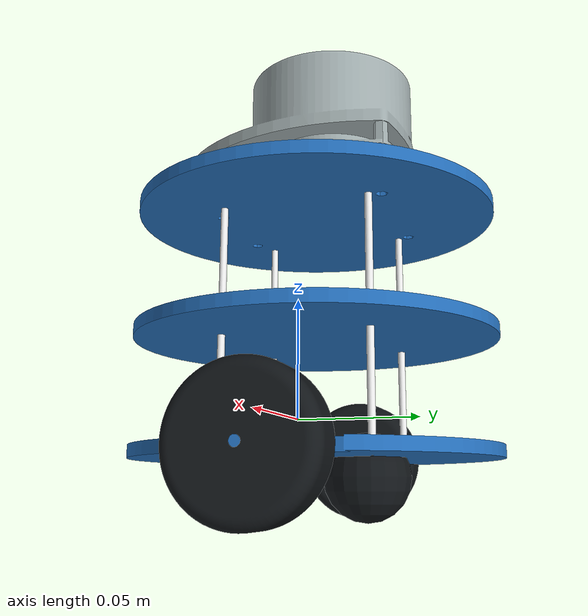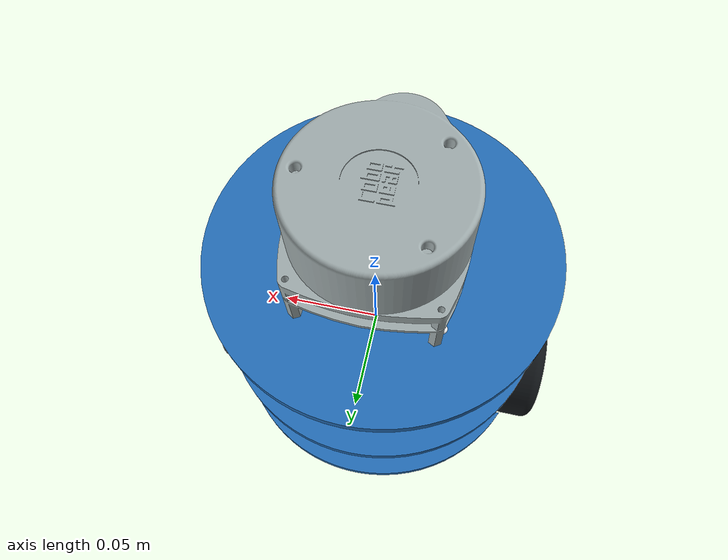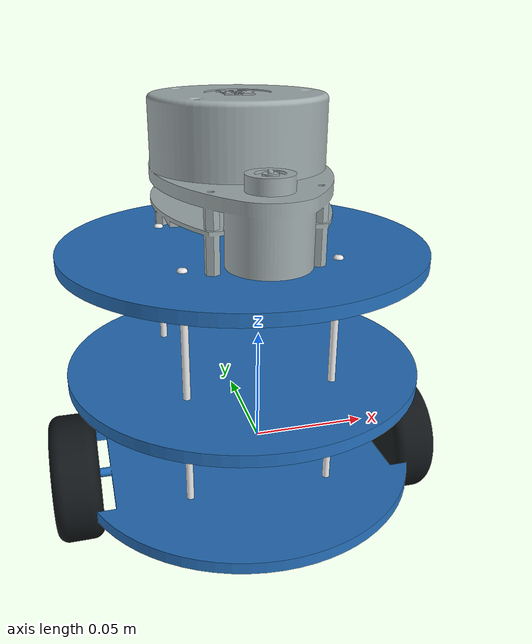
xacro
<?xml version="1.0"?>

<robot xmlns:xacro="http://www.ros.org/wiki/xacro" name="turtle_bot">
    <!--CONSTANTS-->
    <xacro:property name="TURTLE_BOT_PACKAGE_NAME" value="turtle_bot_desc"/>

    <!--IMPORTS-->
    <xacro:include filename="$(find ${TURTLE_BOT_PACKAGE_NAME})/turtle_bot/turtle_bot_core.xacro"/>
    <xacro:include filename="$(find ${TURTLE_BOT_PACKAGE_NAME})/turtle_bot/sensors/lidar.xacro"/>
    <xacro:include filename="$(find ${TURTLE_BOT_PACKAGE_NAME})/turtle_bot/control/gazebo_control.xacro"/>

    <!--SENSORS-->
    <!--LiDAR Sensors-->
    <xacro:lidar parent_link="top_layer"/>

</robot>

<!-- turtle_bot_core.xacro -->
<robot xmlns:xacro="http://www.ros.org/wiki/xacro">

    <!--CONSTANTS-->
    <xacro:property name="PI" value="3.14159"/>

    <!--IMPORTS-->
    <xacro:include filename="$(find ${TURTLE_BOT_PACKAGE_NAME})/turtle_bot/macros/material.xacro"/>
    <xacro:include filename="$(find ${TURTLE_BOT_PACKAGE_NAME})/turtle_bot/macros/wheels.xacro"/>
    <xacro:include filename="$(find ${TURTLE_BOT_PACKAGE_NAME})/turtle_bot/macros/inertial.xacro"/>
    <xacro:include filename="$(find ${TURTLE_BOT_PACKAGE_NAME})/turtle_bot/macros/standoff.xacro"/>

    <!--VARIABLES-->
    <xacro:property name="wheel_mass" value="0.062953359098010322481"/>
    <xacro:property name="standoff_mass" value="0.0059281210142902648896"/>
    <xacro:property name="lidar_mass" value="0.19842109046142830664"/>

    <xacro:property name="wheel_torque" value="20"/>
    <xacro:property name="caster_wheel_radius" value="0.017"/>

    <!--BASE LAYER-->
    <link name="base_layer">
        <visual>
            <origin xyz="-0.0054085951405280288662 0.0063858766431100638661 -0.010733145442279119069" rpy="0 -0 0" />
            <geometry>
                <mesh filename="package://turtle_bot_desc/turtle_bot/base_layer.stl"/>
            </geometry>
            <material name="blue_chassis"/>
        </visual>
        <collision>
            <origin xyz="-0.0054085951405280288662 0.0063858766431100638661 -0.010733145442279119069" rpy="0 -0 0" />
            <geometry>
                <mesh filename="package://turtle_bot_desc/turtle_bot/base_layer.stl"/>
            </geometry>
        </collision>
        <inertial>
            <origin xyz="-0.005408595140528033203 0.0063858766431100647334 -0.013233145442279119555" rpy="0 0 0"/>
            <mass value="0.076708445791032489613" />
            <inertia ixx="0.00011517387353310796605" ixy="0"  ixz="0" iyy="8.9133149707990215016e-05" iyz="0" izz="0.00020398868575373328422" />
        </inertial>
    </link>

    <!--GAZEBO MATERIAL-->
    <gazebo reference="base_layer">
        <material>Gazebo/Blue</material>
    </gazebo>

    <!--MID LAYER-->
    <link name="mid_layer">
        <visual>
            <origin xyz="-0.030052038200428277809 0.030052038200428274339 -0.050000000000000002776" rpy="0 -0 0" />
            <geometry>
                <mesh filename="package://turtle_bot_desc/turtle_bot/mid_layer.stl"/>
            </geometry>
            <material name="blue_chassis"/>
        </visual>
        <collision>
             <origin xyz="-0.030052038200428277809 0.030052038200428274339 -0.050000000000000002776" rpy="0 -0 0" />
            <geometry>
                <mesh filename="package://turtle_bot_desc/turtle_bot/mid_layer.stl"/>
            </geometry>
            </collision>
        <inertial>
            <origin xyz="-0.030052038200428277809 0.030052038200428277809 -0.0024999999999999952816" rpy="0 0 0"/>
            <mass value="0.083011182331746063978" />
            <inertia ixx="0.00011697427137894075811" ixy="0"  ixz="0" iyy="0.00011697427137894071745" iyz="0" izz="0.00023360266283149923186" />
        </inertial>
    </link>

     <!--GAZEBO MATERIAL-->
    <gazebo reference="mid_layer">
        <material>Gazebo/Blue</material>
    </gazebo>

    <!--TOP_LAYER-->
    <link name="top_layer">
        <visual>
            <origin xyz="-0.030052038200428277809 0.030052038200428274339 -0.10000000000000000555" rpy="0 -0 0" />
            <geometry>
                <mesh filename="package://turtle_bot_desc/turtle_bot/top_layer.stl"/>
            </geometry>
            <material name="blue_chassis"/>
        </visual>
        <collision>
            <origin xyz="-0.030052038200428277809 0.030052038200428274339 -0.10000000000000000555" rpy="0 -0 0" />
            <geometry>
                <mesh filename="package://turtle_bot_desc/turtle_bot/top_layer.stl"/>
            </geometry>
        </collision>
        <inertial>
            <origin xyz="-0.030052036065168211826 0.030052035531353181452 -0.0025000000000000022204" rpy="0 0 0"/>
            <mass value="0.082705577310317246464" />
            <inertia ixx="0.0001165988706191439545" ixy="-6.1809275542363220998e-12"  ixz="0" iyy="0.00011679231738675145886" iyz="0" izz="0.00023304658143376906932" />
        </inertial>
    </link>

     <!--GAZEBO MATERIAL-->
    <gazebo reference="top_layer">
        <material>Gazebo/Blue</material>
    </gazebo>

    <!--STANDOFFS-->
    <!--STANDOFF 1-->
    <xacro:standoff base_number="1" standoff_mass="${standoff_mass}">
        <origin xyz="0.024643443059900252412 -0.023666161557318210473 -0.015733145442279120041" rpy="3.141592653589793116 -0 0" />
        <parent link="base_layer"/>
    </xacro:standoff>

    <joint name="mid_joint_1" type="fixed">
        <origin xyz="-3.4694469519536141888e-18 0 -0.052499999999999991118" rpy="3.141592653589793116 -0 0" />
        <parent link="Standoff_1" />
        <child link="mid_layer" />
        <axis xyz="0 0 1"/>
        <limit effort="1" velocity="20" />
        <joint_properties friction="0.0"/>
    </joint>

    <joint name="top_joint_1" type="fixed">
        <origin xyz="-3.4694469519536141888e-18 0 -0.10499999999999999611" rpy="3.141592653589793116 -0 0" />
        <parent link="Standoff_1" />
        <child link="top_layer" />
        <axis xyz="0 0 1"/>
        <limit effort="1" velocity="20" />
        <joint_properties friction="0.0"/>
    </joint>

    <!--STANDOFF 2-->
    <xacro:standoff base_number="2" standoff_mass="${standoff_mass}">
        <origin xyz="-0.035460633340956310144 -0.023666161557318217412 -0.015733145442279120041" rpy="3.141592653589793116 -0 0" />
        <parent link="base_layer"/>
    </xacro:standoff>

    <!--STANDOFF 3-->
    <xacro:standoff base_number="3" standoff_mass="${standoff_mass}">
        <origin xyz="0.024643443059900252412 0.036437914843538331267 -0.015733145442279120041" rpy="3.141592653589793116 -0 0" />
        <parent link="base_layer"/>
    </xacro:standoff>

    <!--STANDOFF 4-->
    <xacro:standoff base_number="4" standoff_mass="${standoff_mass}">
        <origin xyz="-0.035460633340956282389 0.036437914843538338205 -0.015733145442279120041" rpy="3.141592653589793116 -0 0" />
        <parent link="base_layer"/>
    </xacro:standoff>

    <!--WHEELS-->
    <!--LEFT_WHEELS-->
    <xacro:wheel wheel_number="1" wheel_mass="${wheel_mass}" reflect="1">
        <origin xyz="0.080330040283809592272 0.0063858766431100638661 -0.01323314544227911782" rpy="-0 1.570796326794896558 0"/>
        <parent link="base_layer"/>
    </xacro:wheel>

    <!--RIGHT_WHEEL-->
    <xacro:wheel wheel_number="2" wheel_mass="${wheel_mass}" reflect="-1">
        <origin xyz="-0.091147230564865622249 0.0063858766431100638661 -0.01323314544227911782" rpy="-0 -1.570796326794896558 0"/>
        <parent link="base_layer"/>
    </xacro:wheel>

    <!--CASTER WHEEL-->
    <xacro:caster_wheel wheel_mass="${wheel_mass}">
        <origin xyz="0.005405 0.03 -0.01323" rpy="0 0 0"/>
        <parent link="base_layer"/>
    </xacro:caster_wheel>

</robot>

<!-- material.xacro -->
<robot xmlns:xacro="http://www.ros.org/wiki/xacro">

    <material name="blue_chassis">
        <color rgba = "0.14117647058823529216 0.43137254901960786491 0.7254901960784313486 1.0"/>
    </material>

    <material name="silver_standoff">
        <color rgba = "0.91764705882352937127 0.91764705882352937127 0.91764705882352937127 1.0"/>
    </material>

    <material name="grey_wheel">
        <color rgba = "0.070588235294117646079 0.08627450980392156743 0.098039215686274508443 1.0"/>
    </material>

    <material name = "black_lidar">
        <color rgba =  "0.62745098039215685404 0.6745098039215686736 0.67843137254901964006 1.0"/>
    </material>

</robot>

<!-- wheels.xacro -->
<robot xmlns:xacro="http://www.ros.org/wiki/xacro">

        <xacro:macro name="wheel" params="wheel_number wheel_mass reflect *origin *parent">
            <joint name = "wheel_joint_${wheel_number}" type="continuous">
                    <xacro:insert_block name="origin"/>
                    <xacro:insert_block name="parent"/>
                    <child link="wheel_${wheel_number}"/>
                    <axis xyz="0 0 ${reflect * 1}">
                            <limit>
                                    <effort>20</effort>
                            </limit>
                    </axis>
            </joint>

            <link name="wheel_${wheel_number}">
                    <visual name="wheel_visual_${wheel_number}">
                        <origin xyz="0 0 -0.0097931037703787721105" rpy="0 -0 0" />
                        <geometry>
                                <mesh filename="package://turtle_bot_desc/turtle_bot/wheel.stl"/>
                        </geometry>
                        <material name="grey_wheel"/>
                    </visual>
                    <collision name="wheel_collision_${wheel_number}">
                        <origin xyz="0 0 -0.0097931037703787721105" rpy="0 -0 0" />
                        <geometry>
                                <mesh filename="package://turtle_bot_desc/turtle_bot/wheel.stl"/>
                        </geometry>
                    </collision>
                    <xacro:wheel_inertial  mass="${wheel_mass}">
                        <origin xyz="-9.1775008443145391876e-19 -6.7665573084812139498e-22 -0.0099999999999999932693" rpy="0 0 0"/>
                        <inertia ixx="1.3557884731460580961e-05" ixy="0"  ixz="0" iyy="1.3557884731460580961e-05" iyz="0" izz="2.3145947892207558913e-05" />
                    </xacro:wheel_inertial>
            </link>

            <!--Gazebo Material-->
            <gazebo reference="wheel_${wheel_number}">
                <material>Gazebo/Gray</material>

                <!--Friction Coefficients-->
                <mu1>100</mu1>
                <mu2>100</mu2>
                <kp>10000000.0</kp>
                <kd>1.0</kd>
                <minDepth>0.01</minDepth>
                <fdir1>1 0 0</fdir1>
            </gazebo>
        </xacro:macro>

        <xacro:macro name="caster_wheel" params="wheel_mass *origin *parent">
                <joint name = "caster_wheel_joint" type="fixed">
                    <xacro:insert_block name="origin"/>
                    <xacro:insert_block name="parent"/>
                    <child link="caster_wheel"/>
                </joint>

                <link name="caster_wheel">
                    <visual name="caster_wheel_visual">
                        <origin xyz="0 0 -0.0097931037703787721105" rpy="0 -0 0" />
                        <geometry>
                               <sphere radius="${caster_wheel_radius}"/>
                        </geometry>
                        <material name="grey_wheel"/>
                    </visual>
                    <collision name="caster_wheel_collision">
                        <origin xyz="0 0 -0.0097931037703787721105" rpy="0 -0 0" />
                        <geometry>
                               <sphere radius="${caster_wheel_radius}"/>
                        </geometry>
                    </collision>
                    <xacro:wheel_inertial  mass="${wheel_mass}">
                        <origin xyz="-9.1775008443145391876e-19 -6.7665573084812139498e-22 -0.0099999999999999932693" rpy="0 0 0"/>
                        <inertia ixx="1.3557884731460580961e-05" ixy="0"  ixz="0" iyy="1.3557884731460580961e-05" iyz="0" izz="2.3145947892207558913e-05" />
                    </xacro:wheel_inertial>
                </link>

                <!--Gazebo Material-->
                <gazebo reference="caster_wheel">
                    <material>Gazebo/Gray</material>

                    <!--Friction Coefficients-->
                    <!--Making it frictionless-->
                    <mu1>0.001</mu1>
                    <mu2>0.001</mu2>
                </gazebo>
        </xacro:macro>
</robot>

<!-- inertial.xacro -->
<robot xmlns:xacro="http://www.ros.org/wiki/xacro">

        <xacro:macro name="wheel_inertial" params="mass *origin *inertia">
            <inertial name="wheel_inertial">
                    <xacro:insert_block name="origin"/>
                    <mass value="${mass}"/>
                    <xacro:insert_block name="inertia"/>
            </inertial>
        </xacro:macro>

        <xacro:macro name="standoff_inertial" params="mass *origin *inertia">
                <inertial name="standoff_inertial">
                        <xacro:insert_block name="origin"/>
                        <mass value="${mass}"/>
                        <xacro:insert_block name="inertia"/>
                </inertial>
        </xacro:macro>

        <xacro:macro name="chassis_inertial" params="prefix *mass *origin *inertia">
                <inertial name="${prefix}_inertial">
                        <xacro:insert_block name="origin"/>
                        <xacro:insert_block name="mass"/>
                        <xacro:insert_block name="inertia"/>
                </inertial>
        </xacro:macro>

        <xacro:macro name="lidar_inertial" params="prefix mass *origin *inertia">
                <inertial name="${prefix}_inertial">
                        <xacro:insert_block name="origin"/>
                        <mass value="${mass}"/>
                        <xacro:insert_block name="inertia"/>
                </inertial>
        </xacro:macro>
</robot>

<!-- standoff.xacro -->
<robot xmlns:xacro="http://www.ros.org/wiki/xacro">

    <xacro:macro name="standoff" params="base_number standoff_mass *origin *parent">
        <joint name="base_joint_${base_number}" type="fixed">
            <xacro:insert_block name="origin"/>
            <xacro:insert_block name="parent"/>
            <child link="Standoff_${base_number}"/>
            <axis xyz="0 0 1">
                <limit effort="1" velocity="20"/>
            </axis>
        </joint>

        <link name="Standoff_${base_number}">
            <visual>
                <origin xyz="0 0 0" rpy="3.141592653589793116 -0 0" />
                <geometry>
                    <mesh filename="package://turtle_bot_desc/turtle_bot/standoff.stl"/>
                </geometry>
                <material name="silver_standoff"/>
            </visual>
            <collision name="standoff_${base_number}_wheel_collision">
                <origin xyz="0 0 0" rpy="3.141592653589793116 -0 0" />
                <geometry>
                    <mesh filename="package://turtle_bot_desc/turtle_bot/standoff.stl"/>
                </geometry>
            </collision>
            <xacro:standoff_inertial  mass="${standoff_mass}">
                <origin xyz="-1.2885779678748708114e-19 -9.2374474921235031905e-20 -0.053411456531411952153" rpy="0 0 0"/>
                <inertia ixx="5.6380166401882059212e-06" ixy="0"  ixz="0" iyy="5.6380166401882059212e-06" iyz="0" izz="6.7280238291201044044e-09"/>
            </xacro:standoff_inertial>
        </link>

        <!--Gazebo Material-->
        <gazebo reference="Standoff_${base_number}">
            <material>Gazebo/Gray</material>

            <mu1>0.2</mu1> <!--Low friction since its a passive part-->
            <mu2>0.2</mu2> <!--Same as above-->

            <kp>100000.0</kp>
            <kd>0.5</kd>

            <minDepth>0.001</minDepth>
        </gazebo>
    </xacro:macro>
</robot>

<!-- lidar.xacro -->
<robot xmlns:xacro="http://www.ros.org/wiki/xacro">

    <xacro:macro name="lidar" params="parent_link">

        <!--VARIABLES-->
        <xacro:property name="lidar_mass" value="0.19842109046142830664"/>
        <xacro:property name="lidar_sensor_origin" value="0.0298"/>

        <joint name="lidar_base_1" type="fixed">
            <origin xyz="-0.050052038200428278225 -0.0049479617995717289913 0" rpy="3.141592653589793116 -1.232595164407830946e-32 -1.570796326794896558" />
            <parent link="${parent_link}"/>
            <child link="lidar"/>
            <axis xyz="0 0 1">
                <limit effort="1" velocity="20" />
            </axis>
            <joint_properties friction="0.0"/>
        </joint>

        <link name="lidar">
            <visual name="lidar_visual">
                <origin xyz="-0.027750000000000038525 -0.020000000000000007355 -0.024600000000000010747" rpy="-1.570796326794896558 -0 -1.7804189523299639519e-65" />
                <geometry>
                    <mesh filename="package://turtle_bot_desc/turtle_bot/lidar.stl"/>
                </geometry>
                <material name="black_lidar"/>
            </visual>
            <collision name="lidar_collision">
                <origin xyz="-0.027750000000000038525 -0.020000000000000007355 -0.024600000000000010747" rpy="-1.570796326794896558 -0 -1.7804189523299639519e-65" />
            <geometry>
                <mesh filename="package://turtle_bot_desc/turtle_bot/lidar.stl"/>
            </geometry>
            </collision>
            <xacro:lidar_inertial prefix="lidar" mass="${lidar_mass}">
                <origin xyz="-0.03523346988333641433 -0.019908073888912462823 -0.03526812773284024316" rpy="0 0 0"/>
                <inertia ixx="9.1685841634372709547e-05" ixy="1.1957791832927591295e-07"  ixz="-2.3594440914703956132e-05" iyy="0.0001432424360670294587" iyz="-4.6096994025815581498e-07" izz="0.00016373727901481947605" />
            </xacro:lidar_inertial>
        </link>

        <gazebo reference="lidar">
            <sensor name="rplidar_a1" type="gpu_lidar">
                <pose>0 0 ${lidar_sensor_origin} 0 0 0</pose>
                <always_on>true</always_on>
                <visualize>true</visualize>
                <update_rate>10</update_rate>
                <lidar>
                    <scan>
                        <horizontal>
                            <samples>5000</samples>
                            <resolution>1</resolution>
                            <min_angle>-3.14</min_angle>
                            <max_angle>3.14</max_angle>
                        </horizontal>
                    </scan>
                    <range>
                        <min>0.05</min>
                        <max>6</max>
                        <resolution>0.015</resolution>
                    </range>
                    <noise>
                        <type>gaussian</type>
                        <mean>0.0</mean>
                        <stddev>0.01</stddev>
                    </noise>
                </lidar>
                <topic>scan</topic>
                <gz_frame_id>lidar</gz_frame_id>
            </sensor>
        </gazebo>
    </xacro:macro>

</robot>
